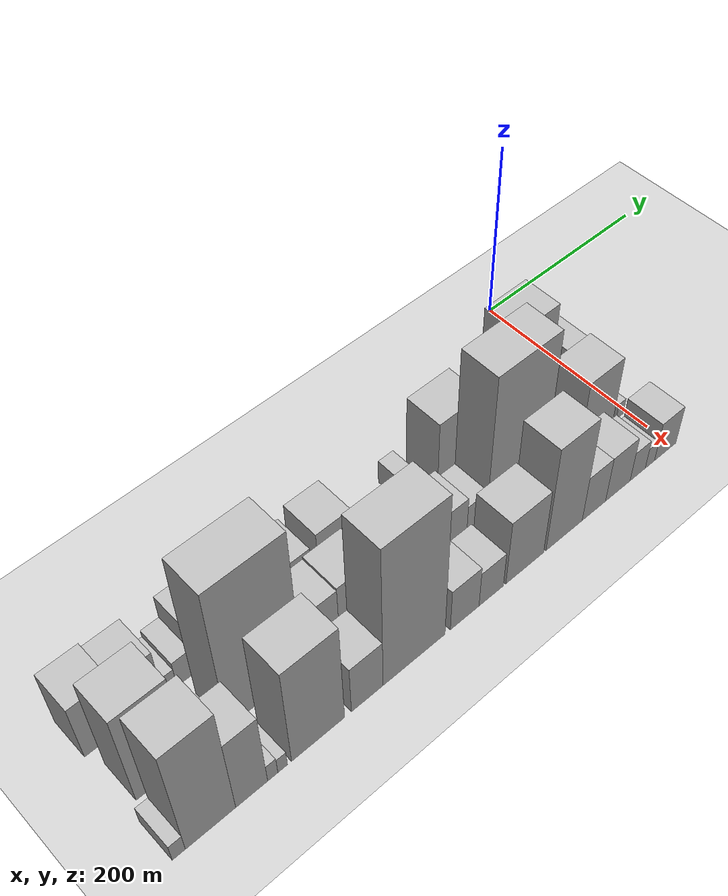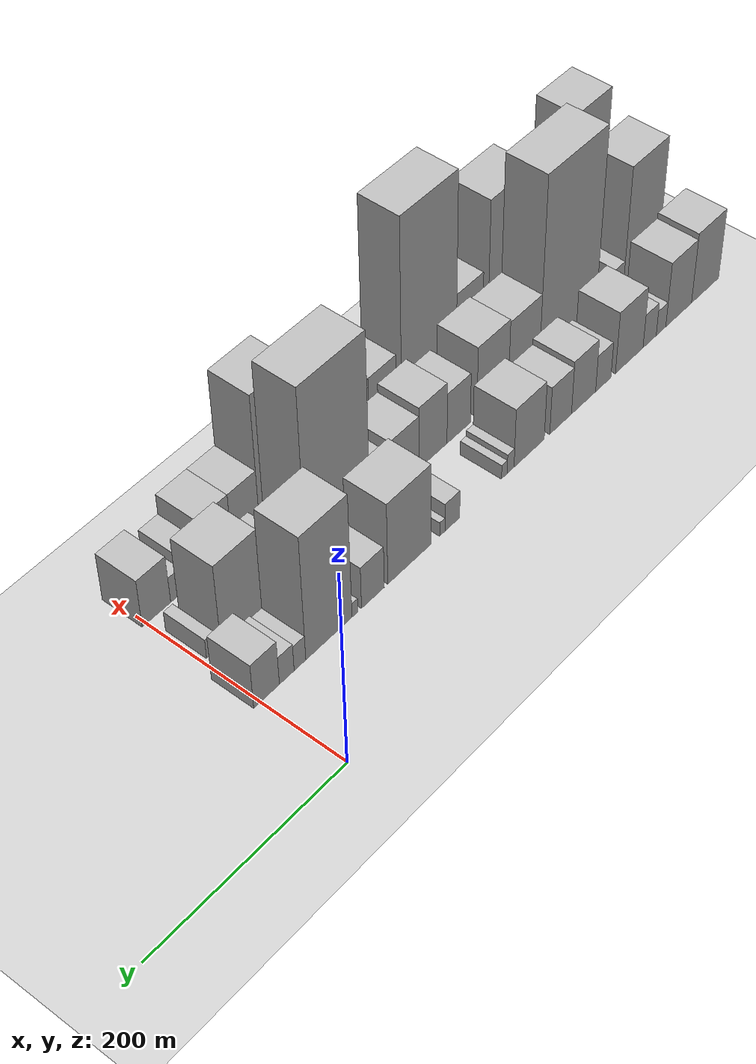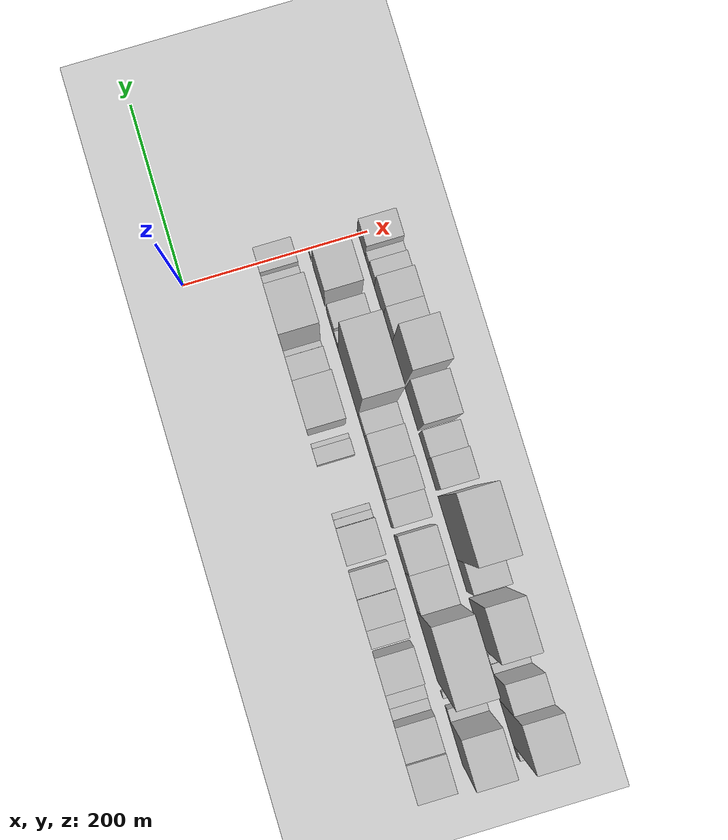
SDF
<sdf version="1.6">
 <world name="default">
  <include><name>ground_plane_1</name><uri>model://HANNAS_ground_plane</uri></include>
  <model name="building_1">
   <static>1</static>
   <pose>100.0000 -540.6240 0 0.000000 0.000000 0.000000</pose>
   <link name="link">
    <pose>0 0 37.50 0 0 0</pose>
    <collision name="collision"><geometry><box><size>40.0000 38.7520 75.0000</size></box></geometry></collision>
    <visual name="visual">
     <cast_shadows>0</cast_shadows>
     <geometry><box><size>40.0000 38.7520 75.0000</size></box></geometry>
     <material>
      <script>
       <uri>model://HANNAS_wall/materials/scripts</uri>
       <uri>model://HANNAS_wall/materials/textures</uri>
       <name>vrc/HANNAS_wall</name>
      </script>
     </material>
    </visual>
   </link>
  </model>
  <model name="building_2">
   <static>1</static>
   <pose>100.0000 -503.2858 0 0.000000 0.000000 0.000000</pose>
   <link name="link">
    <pose>0 0 34.50 0 0 0</pose>
    <collision name="collision"><geometry><box><size>40.0000 35.9245 69.0000</size></box></geometry></collision>
    <visual name="visual">
     <cast_shadows>0</cast_shadows>
     <geometry><box><size>40.0000 35.9245 69.0000</size></box></geometry>
     <material>
      <script>
       <uri>model://HANNAS_wall/materials/scripts</uri>
       <uri>model://HANNAS_wall/materials/textures</uri>
       <name>vrc/HANNAS_wall</name>
      </script>
     </material>
    </visual>
   </link>
  </model>
  <model name="building_3">
   <static>1</static>
   <pose>100.0000 -478.7070 0 0.000000 0.000000 0.000000</pose>
   <link name="link">
    <pose>0 0 13.50 0 0 0</pose>
    <collision name="collision"><geometry><box><size>40.0000 13.2330 27.0000</size></box></geometry></collision>
    <visual name="visual">
     <cast_shadows>0</cast_shadows>
     <geometry><box><size>40.0000 13.2330 27.0000</size></box></geometry>
     <material>
      <script>
       <uri>model://HANNAS_wall/materials/scripts</uri>
       <uri>model://HANNAS_wall/materials/textures</uri>
       <name>vrc/HANNAS_wall</name>
      </script>
     </material>
    </visual>
   </link>
  </model>
  <model name="building_4">
   <static>1</static>
   <pose>100.0000 -463.0594 0 0.000000 0.000000 0.000000</pose>
   <link name="link">
    <pose>0 0 18.00 0 0 0</pose>
    <collision name="collision"><geometry><box><size>40.0000 18.0622 36.0000</size></box></geometry></collision>
    <visual name="visual">
     <cast_shadows>0</cast_shadows>
     <geometry><box><size>40.0000 18.0622 36.0000</size></box></geometry>
     <material>
      <script>
       <uri>model://HANNAS_wall/materials/scripts</uri>
       <uri>model://HANNAS_wall/materials/textures</uri>
       <name>vrc/HANNAS_wall</name>
      </script>
     </material>
    </visual>
   </link>
  </model>
  <model name="building_5">
   <static>1</static>
   <pose>100.0000 -435.4157 0 0.000000 0.000000 0.000000</pose>
   <link name="link">
    <pose>0 0 33.00 0 0 0</pose>
    <collision name="collision"><geometry><box><size>40.0000 37.2252 66.0000</size></box></geometry></collision>
    <visual name="visual">
     <cast_shadows>0</cast_shadows>
     <geometry><box><size>40.0000 37.2252 66.0000</size></box></geometry>
     <material>
      <script>
       <uri>model://HANNAS_wall/materials/scripts</uri>
       <uri>model://HANNAS_wall/materials/textures</uri>
       <name>vrc/HANNAS_wall</name>
      </script>
     </material>
    </visual>
   </link>
  </model>
  <model name="building_6">
   <static>1</static>
   <pose>100.0000 -400.6879 0 0.000000 0.000000 0.000000</pose>
   <link name="link">
    <pose>0 0 19.50 0 0 0</pose>
    <collision name="collision"><geometry><box><size>40.0000 20.2305 39.0000</size></box></geometry></collision>
    <visual name="visual">
     <cast_shadows>0</cast_shadows>
     <geometry><box><size>40.0000 20.2305 39.0000</size></box></geometry>
     <material>
      <script>
       <uri>model://HANNAS_wall/materials/scripts</uri>
       <uri>model://HANNAS_wall/materials/textures</uri>
       <name>vrc/HANNAS_wall</name>
      </script>
     </material>
    </visual>
   </link>
  </model>
  <model name="building_7">
   <static>1</static>
   <pose>100.0000 -374.8628 0 0.000000 0.000000 0.000000</pose>
   <link name="link">
    <pose>0 0 28.50 0 0 0</pose>
    <collision name="collision"><geometry><box><size>40.0000 31.4197 57.0000</size></box></geometry></collision>
    <visual name="visual">
     <cast_shadows>0</cast_shadows>
     <geometry><box><size>40.0000 31.4197 57.0000</size></box></geometry>
     <material>
      <script>
       <uri>model://HANNAS_wall/materials/scripts</uri>
       <uri>model://HANNAS_wall/materials/textures</uri>
       <name>vrc/HANNAS_wall</name>
      </script>
     </material>
    </visual>
   </link>
  </model>
  <model name="building_8">
   <static>1</static>
   <pose>100.0000 -345.2533 0 0.000000 0.000000 0.000000</pose>
   <link name="link">
    <pose>0 0 25.50 0 0 0</pose>
    <collision name="collision"><geometry><box><size>40.0000 27.7993 51.0000</size></box></geometry></collision>
    <visual name="visual">
     <cast_shadows>0</cast_shadows>
     <geometry><box><size>40.0000 27.7993 51.0000</size></box></geometry>
     <material>
      <script>
       <uri>model://HANNAS_wall/materials/scripts</uri>
       <uri>model://HANNAS_wall/materials/textures</uri>
       <name>vrc/HANNAS_wall</name>
      </script>
     </material>
    </visual>
   </link>
  </model>
  <model name="building_9">
   <static>1</static>
   <pose>100.0000 -305.4927 0 0.000000 0.000000 0.000000</pose>
   <link name="link">
    <pose>0 0 31.50 0 0 0</pose>
    <collision name="collision"><geometry><box><size>40.0000 37.7221 63.0000</size></box></geometry></collision>
    <visual name="visual">
     <cast_shadows>0</cast_shadows>
     <geometry><box><size>40.0000 37.7221 63.0000</size></box></geometry>
     <material>
      <script>
       <uri>model://HANNAS_wall/materials/scripts</uri>
       <uri>model://HANNAS_wall/materials/textures</uri>
       <name>vrc/HANNAS_wall</name>
      </script>
     </material>
    </visual>
   </link>
  </model>
  <model name="building_10">
   <static>1</static>
   <pose>100.0000 -282.3842 0 0.000000 0.000000 0.000000</pose>
   <link name="link">
    <pose>0 0 10.50 0 0 0</pose>
    <collision name="collision"><geometry><box><size>40.0000 8.4948 21.0000</size></box></geometry></collision>
    <visual name="visual">
     <cast_shadows>0</cast_shadows>
     <geometry><box><size>40.0000 8.4948 21.0000</size></box></geometry>
     <material>
      <script>
       <uri>model://HANNAS_wall/materials/scripts</uri>
       <uri>model://HANNAS_wall/materials/textures</uri>
       <name>vrc/HANNAS_wall</name>
      </script>
     </material>
    </visual>
   </link>
  </model>
  <model name="building_11">
   <static>1</static>
   <pose>100.0000 -274.6792 0 0.000000 0.000000 0.000000</pose>
   <link name="link">
    <pose>0 0 7.50 0 0 0</pose>
    <collision name="collision"><geometry><box><size>40.0000 6.9152 15.0000</size></box></geometry></collision>
    <visual name="visual">
     <cast_shadows>0</cast_shadows>
     <geometry><box><size>40.0000 6.9152 15.0000</size></box></geometry>
     <material>
      <script>
       <uri>model://HANNAS_wall/materials/scripts</uri>
       <uri>model://HANNAS_wall/materials/textures</uri>
       <name>vrc/HANNAS_wall</name>
      </script>
     </material>
    </visual>
   </link>
  </model>
  <model name="building_12">
   <static>1</static>
   <pose>100.0000 -212.0638 0 0.000000 0.000000 0.000000</pose>
   <link name="link">
    <pose>0 0 15.00 0 0 0</pose>
    <collision name="collision"><geometry><box><size>40.0000 17.4385 30.0000</size></box></geometry></collision>
    <visual name="visual">
     <cast_shadows>0</cast_shadows>
     <geometry><box><size>40.0000 17.4385 30.0000</size></box></geometry>
     <material>
      <script>
       <uri>model://HANNAS_wall/materials/scripts</uri>
       <uri>model://HANNAS_wall/materials/textures</uri>
       <name>vrc/HANNAS_wall</name>
      </script>
     </material>
    </visual>
   </link>
  </model>
  <model name="building_13">
   <static>1</static>
   <pose>100.0000 -200.2805 0 0.000000 0.000000 0.000000</pose>
   <link name="link">
    <pose>0 0 7.50 0 0 0</pose>
    <collision name="collision"><geometry><box><size>40.0000 6.1282 15.0000</size></box></geometry></collision>
    <visual name="visual">
     <cast_shadows>0</cast_shadows>
     <geometry><box><size>40.0000 6.1282 15.0000</size></box></geometry>
     <material>
      <script>
       <uri>model://HANNAS_wall/materials/scripts</uri>
       <uri>model://HANNAS_wall/materials/textures</uri>
       <name>vrc/HANNAS_wall</name>
      </script>
     </material>
    </visual>
   </link>
  </model>
  <model name="building_14">
   <static>1</static>
   <pose>100.0000 -162.4291 0 0.000000 0.000000 0.000000</pose>
   <link name="link">
    <pose>0 0 43.50 0 0 0</pose>
    <collision name="collision"><geometry><box><size>40.0000 49.5747 87.0000</size></box></geometry></collision>
    <visual name="visual">
     <cast_shadows>0</cast_shadows>
     <geometry><box><size>40.0000 49.5747 87.0000</size></box></geometry>
     <material>
      <script>
       <uri>model://HANNAS_wall/materials/scripts</uri>
       <uri>model://HANNAS_wall/materials/textures</uri>
       <name>vrc/HANNAS_wall</name>
      </script>
     </material>
    </visual>
   </link>
  </model>
  <model name="building_15">
   <static>1</static>
   <pose>100.0000 -120.9237 0 0.000000 0.000000 0.000000</pose>
   <link name="link">
    <pose>0 0 22.50 0 0 0</pose>
    <collision name="collision"><geometry><box><size>40.0000 25.4361 45.0000</size></box></geometry></collision>
    <visual name="visual">
     <cast_shadows>0</cast_shadows>
     <geometry><box><size>40.0000 25.4361 45.0000</size></box></geometry>
     <material>
      <script>
       <uri>model://HANNAS_wall/materials/scripts</uri>
       <uri>model://HANNAS_wall/materials/textures</uri>
       <name>vrc/HANNAS_wall</name>
      </script>
     </material>
    </visual>
   </link>
  </model>
  <model name="building_16">
   <static>1</static>
   <pose>100.0000 -100.9592 0 0.000000 0.000000 0.000000</pose>
   <link name="link">
    <pose>0 0 7.50 0 0 0</pose>
    <collision name="collision"><geometry><box><size>40.0000 6.4929 15.0000</size></box></geometry></collision>
    <visual name="visual">
     <cast_shadows>0</cast_shadows>
     <geometry><box><size>40.0000 6.4929 15.0000</size></box></geometry>
     <material>
      <script>
       <uri>model://HANNAS_wall/materials/scripts</uri>
       <uri>model://HANNAS_wall/materials/textures</uri>
       <name>vrc/HANNAS_wall</name>
      </script>
     </material>
    </visual>
   </link>
  </model>
  <model name="building_17">
   <static>1</static>
   <pose>100.0000 -72.6826 0 0.000000 0.000000 0.000000</pose>
   <link name="link">
    <pose>0 0 66.00 0 0 0</pose>
    <collision name="collision"><geometry><box><size>40.0000 50.0604 132.0000</size></box></geometry></collision>
    <visual name="visual">
     <cast_shadows>0</cast_shadows>
     <geometry><box><size>40.0000 50.0604 132.0000</size></box></geometry>
     <material>
      <script>
       <uri>model://HANNAS_wall/materials/scripts</uri>
       <uri>model://HANNAS_wall/materials/textures</uri>
       <name>vrc/HANNAS_wall</name>
      </script>
     </material>
    </visual>
   </link>
  </model>
  <model name="building_18">
   <static>1</static>
   <pose>100.0000 -41.4615 0 0.000000 0.000000 0.000000</pose>
   <link name="link">
    <pose>0 0 13.50 0 0 0</pose>
    <collision name="collision"><geometry><box><size>40.0000 12.3819 27.0000</size></box></geometry></collision>
    <visual name="visual">
     <cast_shadows>0</cast_shadows>
     <geometry><box><size>40.0000 12.3819 27.0000</size></box></geometry>
     <material>
      <script>
       <uri>model://HANNAS_wall/materials/scripts</uri>
       <uri>model://HANNAS_wall/materials/textures</uri>
       <name>vrc/HANNAS_wall</name>
      </script>
     </material>
    </visual>
   </link>
  </model>
  <model name="building_19">
   <static>1</static>
   <pose>100.0000 -27.5085 0 0.000000 0.000000 0.000000</pose>
   <link name="link">
    <pose>0 0 15.00 0 0 0</pose>
    <collision name="collision"><geometry><box><size>40.0000 15.5241 30.0000</size></box></geometry></collision>
    <visual name="visual">
     <cast_shadows>0</cast_shadows>
     <geometry><box><size>40.0000 15.5241 30.0000</size></box></geometry>
     <material>
      <script>
       <uri>model://HANNAS_wall/materials/scripts</uri>
       <uri>model://HANNAS_wall/materials/textures</uri>
       <name>vrc/HANNAS_wall</name>
      </script>
     </material>
    </visual>
   </link>
  </model>
  <model name="building_20">
   <static>1</static>
   <pose>100.0000 -6.3963 0 0.000000 0.000000 0.000000</pose>
   <link name="link">
    <pose>0 0 24.00 0 0 0</pose>
    <collision name="collision"><geometry><box><size>40.0000 26.7004 48.0000</size></box></geometry></collision>
    <visual name="visual">
     <cast_shadows>0</cast_shadows>
     <geometry><box><size>40.0000 26.7004 48.0000</size></box></geometry>
     <material>
      <script>
       <uri>model://HANNAS_wall/materials/scripts</uri>
       <uri>model://HANNAS_wall/materials/textures</uri>
       <name>vrc/HANNAS_wall</name>
      </script>
     </material>
    </visual>
   </link>
  </model>
  <model name="building_37">
   <static>1</static>
   <pose>155.0000 -527.5149 0 0.000000 0.000000 0.000000</pose>
   <link name="link">
    <pose>0 0 63.00 0 0 0</pose>
    <collision name="collision"><geometry><box><size>40.0000 48.9702 126.0000</size></box></geometry></collision>
    <visual name="visual">
     <cast_shadows>0</cast_shadows>
     <geometry><box><size>40.0000 48.9702 126.0000</size></box></geometry>
     <material>
      <script>
       <uri>model://HANNAS_wall/materials/scripts</uri>
       <uri>model://HANNAS_wall/materials/textures</uri>
       <name>vrc/HANNAS_wall</name>
      </script>
     </material>
    </visual>
   </link>
  </model>
  <model name="building_38">
   <static>1</static>
   <pose>155.0000 -496.4810 0 0.000000 0.000000 0.000000</pose>
   <link name="link">
    <pose>0 0 13.50 0 0 0</pose>
    <collision name="collision"><geometry><box><size>40.0000 13.0975 27.0000</size></box></geometry></collision>
    <visual name="visual">
     <cast_shadows>0</cast_shadows>
     <geometry><box><size>40.0000 13.0975 27.0000</size></box></geometry>
     <material>
      <script>
       <uri>model://HANNAS_wall/materials/scripts</uri>
       <uri>model://HANNAS_wall/materials/textures</uri>
       <name>vrc/HANNAS_wall</name>
      </script>
     </material>
    </visual>
   </link>
  </model>
  <model name="building_39">
   <static>1</static>
   <pose>155.0000 -477.5312 0 0.000000 0.000000 0.000000</pose>
   <link name="link">
    <pose>0 0 7.50 0 0 0</pose>
    <collision name="collision"><geometry><box><size>40.0000 6.8021 15.0000</size></box></geometry></collision>
    <visual name="visual">
     <cast_shadows>0</cast_shadows>
     <geometry><box><size>40.0000 6.8021 15.0000</size></box></geometry>
     <material>
      <script>
       <uri>model://HANNAS_wall/materials/scripts</uri>
       <uri>model://HANNAS_wall/materials/textures</uri>
       <name>vrc/HANNAS_wall</name>
      </script>
     </material>
    </visual>
   </link>
  </model>
  <model name="building_40">
   <static>1</static>
   <pose>155.0000 -427.5598 0 0.000000 0.000000 0.000000</pose>
   <link name="link">
    <pose>0 0 96.00 0 0 0</pose>
    <collision name="collision"><geometry><box><size>40.0000 75.1407 192.0000</size></box></geometry></collision>
    <visual name="visual">
     <cast_shadows>0</cast_shadows>
     <geometry><box><size>40.0000 75.1407 192.0000</size></box></geometry>
     <material>
      <script>
       <uri>model://HANNAS_wall/materials/scripts</uri>
       <uri>model://HANNAS_wall/materials/textures</uri>
       <name>vrc/HANNAS_wall</name>
      </script>
     </material>
    </visual>
   </link>
  </model>
  <model name="building_41">
   <static>1</static>
   <pose>155.0000 -370.0305 0 0.000000 0.000000 0.000000</pose>
   <link name="link">
    <pose>0 0 36.00 0 0 0</pose>
    <collision name="collision"><geometry><box><size>40.0000 39.9179 72.0000</size></box></geometry></collision>
    <visual name="visual">
     <cast_shadows>0</cast_shadows>
     <geometry><box><size>40.0000 39.9179 72.0000</size></box></geometry>
     <material>
      <script>
       <uri>model://HANNAS_wall/materials/scripts</uri>
       <uri>model://HANNAS_wall/materials/textures</uri>
       <name>vrc/HANNAS_wall</name>
      </script>
     </material>
    </visual>
   </link>
  </model>
  <model name="building_42">
   <static>1</static>
   <pose>155.0000 -330.1764 0 0.000000 0.000000 0.000000</pose>
   <link name="link">
    <pose>0 0 37.50 0 0 0</pose>
    <collision name="collision"><geometry><box><size>40.0000 39.7902 75.0000</size></box></geometry></collision>
    <visual name="visual">
     <cast_shadows>0</cast_shadows>
     <geometry><box><size>40.0000 39.7902 75.0000</size></box></geometry>
     <material>
      <script>
       <uri>model://HANNAS_wall/materials/scripts</uri>
       <uri>model://HANNAS_wall/materials/textures</uri>
       <name>vrc/HANNAS_wall</name>
      </script>
     </material>
    </visual>
   </link>
  </model>
  <model name="building_43">
   <static>1</static>
   <pose>155.0000 -287.9558 0 0.000000 0.000000 0.000000</pose>
   <link name="link">
    <pose>0 0 27.00 0 0 0</pose>
    <collision name="collision"><geometry><box><size>40.0000 28.6510 54.0000</size></box></geometry></collision>
    <visual name="visual">
     <cast_shadows>0</cast_shadows>
     <geometry><box><size>40.0000 28.6510 54.0000</size></box></geometry>
     <material>
      <script>
       <uri>model://HANNAS_wall/materials/scripts</uri>
       <uri>model://HANNAS_wall/materials/textures</uri>
       <name>vrc/HANNAS_wall</name>
      </script>
     </material>
    </visual>
   </link>
  </model>
  <model name="building_44">
   <static>1</static>
   <pose>155.0000 -256.7858 0 0.000000 0.000000 0.000000</pose>
   <link name="link">
    <pose>0 0 33.00 0 0 0</pose>
    <collision name="collision"><geometry><box><size>40.0000 33.6891 66.0000</size></box></geometry></collision>
    <visual name="visual">
     <cast_shadows>0</cast_shadows>
     <geometry><box><size>40.0000 33.6891 66.0000</size></box></geometry>
     <material>
      <script>
       <uri>model://HANNAS_wall/materials/scripts</uri>
       <uri>model://HANNAS_wall/materials/textures</uri>
       <name>vrc/HANNAS_wall</name>
      </script>
     </material>
    </visual>
   </link>
  </model>
  <model name="building_45">
   <static>1</static>
   <pose>155.0000 -223.1368 0 0.000000 0.000000 0.000000</pose>
   <link name="link">
    <pose>0 0 28.50 0 0 0</pose>
    <collision name="collision"><geometry><box><size>40.0000 33.6089 57.0000</size></box></geometry></collision>
    <visual name="visual">
     <cast_shadows>0</cast_shadows>
     <geometry><box><size>40.0000 33.6089 57.0000</size></box></geometry>
     <material>
      <script>
       <uri>model://HANNAS_wall/materials/scripts</uri>
       <uri>model://HANNAS_wall/materials/textures</uri>
       <name>vrc/HANNAS_wall</name>
      </script>
     </material>
    </visual>
   </link>
  </model>
  <model name="building_46">
   <static>1</static>
   <pose>155.0000 -194.4467 0 0.000000 0.000000 0.000000</pose>
   <link name="link">
    <pose>0 0 22.50 0 0 0</pose>
    <collision name="collision"><geometry><box><size>40.0000 23.7713 45.0000</size></box></geometry></collision>
    <visual name="visual">
     <cast_shadows>0</cast_shadows>
     <geometry><box><size>40.0000 23.7713 45.0000</size></box></geometry>
     <material>
      <script>
       <uri>model://HANNAS_wall/materials/scripts</uri>
       <uri>model://HANNAS_wall/materials/textures</uri>
       <name>vrc/HANNAS_wall</name>
      </script>
     </material>
    </visual>
   </link>
  </model>
  <model name="building_47">
   <static>1</static>
   <pose>155.0000 -146.6544 0 0.000000 0.000000 0.000000</pose>
   <link name="link">
    <pose>0 0 94.50 0 0 0</pose>
    <collision name="collision"><geometry><box><size>40.0000 71.8134 189.0000</size></box></geometry></collision>
    <visual name="visual">
     <cast_shadows>0</cast_shadows>
     <geometry><box><size>40.0000 71.8134 189.0000</size></box></geometry>
     <material>
      <script>
       <uri>model://HANNAS_wall/materials/scripts</uri>
       <uri>model://HANNAS_wall/materials/textures</uri>
       <name>vrc/HANNAS_wall</name>
      </script>
     </material>
    </visual>
   </link>
  </model>
  <model name="building_48">
   <static>1</static>
   <pose>155.0000 -103.0081 0 0.000000 0.000000 0.000000</pose>
   <link name="link">
    <pose>0 0 15.00 0 0 0</pose>
    <collision name="collision"><geometry><box><size>40.0000 15.4793 30.0000</size></box></geometry></collision>
    <visual name="visual">
     <cast_shadows>0</cast_shadows>
     <geometry><box><size>40.0000 15.4793 30.0000</size></box></geometry>
     <material>
      <script>
       <uri>model://HANNAS_wall/materials/scripts</uri>
       <uri>model://HANNAS_wall/materials/textures</uri>
       <name>vrc/HANNAS_wall</name>
      </script>
     </material>
    </visual>
   </link>
  </model>
  <model name="building_49">
   <static>1</static>
   <pose>155.0000 -82.1235 0 0.000000 0.000000 0.000000</pose>
   <link name="link">
    <pose>0 0 24.00 0 0 0</pose>
    <collision name="collision"><geometry><box><size>40.0000 26.2899 48.0000</size></box></geometry></collision>
    <visual name="visual">
     <cast_shadows>0</cast_shadows>
     <geometry><box><size>40.0000 26.2899 48.0000</size></box></geometry>
     <material>
      <script>
       <uri>model://HANNAS_wall/materials/scripts</uri>
       <uri>model://HANNAS_wall/materials/textures</uri>
       <name>vrc/HANNAS_wall</name>
      </script>
     </material>
    </visual>
   </link>
  </model>
  <model name="building_50">
   <static>1</static>
   <pose>155.0000 -40.9794 0 0.000000 0.000000 0.000000</pose>
   <link name="link">
    <pose>0 0 43.50 0 0 0</pose>
    <collision name="collision"><geometry><box><size>40.0000 43.9984 87.0000</size></box></geometry></collision>
    <visual name="visual">
     <cast_shadows>0</cast_shadows>
     <geometry><box><size>40.0000 43.9984 87.0000</size></box></geometry>
     <material>
      <script>
       <uri>model://HANNAS_wall/materials/scripts</uri>
       <uri>model://HANNAS_wall/materials/textures</uri>
       <name>vrc/HANNAS_wall</name>
      </script>
     </material>
    </visual>
   </link>
  </model>
  <model name="building_51">
   <static>1</static>
   <pose>155.0000 -9.0992 0 0.000000 0.000000 0.000000</pose>
   <link name="link">
    <pose>0 0 10.50 0 0 0</pose>
    <collision name="collision"><geometry><box><size>40.0000 9.7620 21.0000</size></box></geometry></collision>
    <visual name="visual">
     <cast_shadows>0</cast_shadows>
     <geometry><box><size>40.0000 9.7620 21.0000</size></box></geometry>
     <material>
      <script>
       <uri>model://HANNAS_wall/materials/scripts</uri>
       <uri>model://HANNAS_wall/materials/textures</uri>
       <name>vrc/HANNAS_wall</name>
      </script>
     </material>
    </visual>
   </link>
  </model>
  <model name="building_72">
   <static>1</static>
   <pose>210.0000 -554.0187 0 0.000000 0.000000 0.000000</pose>
   <link name="link">
    <pose>0 0 12.00 0 0 0</pose>
    <collision name="collision"><geometry><box><size>40.0000 11.9625 24.0000</size></box></geometry></collision>
    <visual name="visual">
     <cast_shadows>0</cast_shadows>
     <geometry><box><size>40.0000 11.9625 24.0000</size></box></geometry>
     <material>
      <script>
       <uri>model://HANNAS_wall/materials/scripts</uri>
       <uri>model://HANNAS_wall/materials/textures</uri>
       <name>vrc/HANNAS_wall</name>
      </script>
     </material>
    </visual>
   </link>
  </model>
  <model name="building_73">
   <static>1</static>
   <pose>210.0000 -524.6686 0 0.000000 0.000000 0.000000</pose>
   <link name="link">
    <pose>0 0 75.00 0 0 0</pose>
    <collision name="collision"><geometry><box><size>40.0000 46.7378 150.0000</size></box></geometry></collision>
    <visual name="visual">
     <cast_shadows>0</cast_shadows>
     <geometry><box><size>40.0000 46.7378 150.0000</size></box></geometry>
     <material>
      <script>
       <uri>model://HANNAS_wall/materials/scripts</uri>
       <uri>model://HANNAS_wall/materials/textures</uri>
       <name>vrc/HANNAS_wall</name>
      </script>
     </material>
    </visual>
   </link>
  </model>
  <model name="building_74">
   <static>1</static>
   <pose>210.0000 -485.9888 0 0.000000 0.000000 0.000000</pose>
   <link name="link">
    <pose>0 0 51.00 0 0 0</pose>
    <collision name="collision"><geometry><box><size>40.0000 30.6217 102.0000</size></box></geometry></collision>
    <visual name="visual">
     <cast_shadows>0</cast_shadows>
     <geometry><box><size>40.0000 30.6217 102.0000</size></box></geometry>
     <material>
      <script>
       <uri>model://HANNAS_wall/materials/scripts</uri>
       <uri>model://HANNAS_wall/materials/textures</uri>
       <name>vrc/HANNAS_wall</name>
      </script>
     </material>
    </visual>
   </link>
  </model>
  <model name="building_75">
   <static>1</static>
   <pose>210.0000 -465.7346 0 0.000000 0.000000 0.000000</pose>
   <link name="link">
    <pose>0 0 12.00 0 0 0</pose>
    <collision name="collision"><geometry><box><size>40.0000 9.8868 24.0000</size></box></geometry></collision>
    <visual name="visual">
     <cast_shadows>0</cast_shadows>
     <geometry><box><size>40.0000 9.8868 24.0000</size></box></geometry>
     <material>
      <script>
       <uri>model://HANNAS_wall/materials/scripts</uri>
       <uri>model://HANNAS_wall/materials/textures</uri>
       <name>vrc/HANNAS_wall</name>
      </script>
     </material>
    </visual>
   </link>
  </model>
  <model name="building_76">
   <static>1</static>
   <pose>210.0000 -456.0236 0 0.000000 0.000000 0.000000</pose>
   <link name="link">
    <pose>0 0 10.50 0 0 0</pose>
    <collision name="collision"><geometry><box><size>40.0000 9.5352 21.0000</size></box></geometry></collision>
    <visual name="visual">
     <cast_shadows>0</cast_shadows>
     <geometry><box><size>40.0000 9.5352 21.0000</size></box></geometry>
     <material>
      <script>
       <uri>model://HANNAS_wall/materials/scripts</uri>
       <uri>model://HANNAS_wall/materials/textures</uri>
       <name>vrc/HANNAS_wall</name>
      </script>
     </material>
    </visual>
   </link>
  </model>
  <model name="building_77">
   <static>1</static>
   <pose>210.0000 -420.3888 0 0.000000 0.000000 0.000000</pose>
   <link name="link">
    <pose>0 0 67.50 0 0 0</pose>
    <collision name="collision"><geometry><box><size>40.0000 53.7343 135.0000</size></box></geometry></collision>
    <visual name="visual">
     <cast_shadows>0</cast_shadows>
     <geometry><box><size>40.0000 53.7343 135.0000</size></box></geometry>
     <material>
      <script>
       <uri>model://HANNAS_wall/materials/scripts</uri>
       <uri>model://HANNAS_wall/materials/textures</uri>
       <name>vrc/HANNAS_wall</name>
      </script>
     </material>
    </visual>
   </link>
  </model>
  <model name="building_78">
   <static>1</static>
   <pose>210.0000 -369.7968 0 0.000000 0.000000 0.000000</pose>
   <link name="link">
    <pose>0 0 33.00 0 0 0</pose>
    <collision name="collision"><geometry><box><size>40.0000 33.4498 66.0000</size></box></geometry></collision>
    <visual name="visual">
     <cast_shadows>0</cast_shadows>
     <geometry><box><size>40.0000 33.4498 66.0000</size></box></geometry>
     <material>
      <script>
       <uri>model://HANNAS_wall/materials/scripts</uri>
       <uri>model://HANNAS_wall/materials/textures</uri>
       <name>vrc/HANNAS_wall</name>
      </script>
     </material>
    </visual>
   </link>
  </model>
  <model name="building_79">
   <static>1</static>
   <pose>210.0000 -319.1376 0 0.000000 0.000000 0.000000</pose>
   <link name="link">
    <pose>0 0 96.00 0 0 0</pose>
    <collision name="collision"><geometry><box><size>40.0000 67.8688 192.0000</size></box></geometry></collision>
    <visual name="visual">
     <cast_shadows>0</cast_shadows>
     <geometry><box><size>40.0000 67.8688 192.0000</size></box></geometry>
     <material>
      <script>
       <uri>model://HANNAS_wall/materials/scripts</uri>
       <uri>model://HANNAS_wall/materials/textures</uri>
       <name>vrc/HANNAS_wall</name>
      </script>
     </material>
    </visual>
   </link>
  </model>
  <model name="building_80">
   <static>1</static>
   <pose>210.0000 -262.7349 0 0.000000 0.000000 0.000000</pose>
   <link name="link">
    <pose>0 0 28.50 0 0 0</pose>
    <collision name="collision"><geometry><box><size>40.0000 32.9367 57.0000</size></box></geometry></collision>
    <visual name="visual">
     <cast_shadows>0</cast_shadows>
     <geometry><box><size>40.0000 32.9367 57.0000</size></box></geometry>
     <material>
      <script>
       <uri>model://HANNAS_wall/materials/scripts</uri>
       <uri>model://HANNAS_wall/materials/textures</uri>
       <name>vrc/HANNAS_wall</name>
      </script>
     </material>
    </visual>
   </link>
  </model>
  <model name="building_81">
   <static>1</static>
   <pose>210.0000 -232.0202 0 0.000000 0.000000 0.000000</pose>
   <link name="link">
    <pose>0 0 24.00 0 0 0</pose>
    <collision name="collision"><geometry><box><size>40.0000 28.4927 48.0000</size></box></geometry></collision>
    <visual name="visual">
     <cast_shadows>0</cast_shadows>
     <geometry><box><size>40.0000 28.4927 48.0000</size></box></geometry>
     <material>
      <script>
       <uri>model://HANNAS_wall/materials/scripts</uri>
       <uri>model://HANNAS_wall/materials/textures</uri>
       <name>vrc/HANNAS_wall</name>
      </script>
     </material>
    </visual>
   </link>
  </model>
  <model name="building_82">
   <static>1</static>
   <pose>210.0000 -191.9331 0 0.000000 0.000000 0.000000</pose>
   <link name="link">
    <pose>0 0 43.50 0 0 0</pose>
    <collision name="collision"><geometry><box><size>40.0000 45.6815 87.0000</size></box></geometry></collision>
    <visual name="visual">
     <cast_shadows>0</cast_shadows>
     <geometry><box><size>40.0000 45.6815 87.0000</size></box></geometry>
     <material>
      <script>
       <uri>model://HANNAS_wall/materials/scripts</uri>
       <uri>model://HANNAS_wall/materials/textures</uri>
       <name>vrc/HANNAS_wall</name>
      </script>
     </material>
    </visual>
   </link>
  </model>
  <model name="building_83">
   <static>1</static>
   <pose>210.0000 -143.3670 0 0.000000 0.000000 0.000000</pose>
   <link name="link">
    <pose>0 0 69.00 0 0 0</pose>
    <collision name="collision"><geometry><box><size>40.0000 45.4508 138.0000</size></box></geometry></collision>
    <visual name="visual">
     <cast_shadows>0</cast_shadows>
     <geometry><box><size>40.0000 45.4508 138.0000</size></box></geometry>
     <material>
      <script>
       <uri>model://HANNAS_wall/materials/scripts</uri>
       <uri>model://HANNAS_wall/materials/textures</uri>
       <name>vrc/HANNAS_wall</name>
      </script>
     </material>
    </visual>
   </link>
  </model>
  <model name="building_84">
   <static>1</static>
   <pose>210.0000 -105.6034 0 0.000000 0.000000 0.000000</pose>
   <link name="link">
    <pose>0 0 30.00 0 0 0</pose>
    <collision name="collision"><geometry><box><size>40.0000 30.0762 60.0000</size></box></geometry></collision>
    <visual name="visual">
     <cast_shadows>0</cast_shadows>
     <geometry><box><size>40.0000 30.0762 60.0000</size></box></geometry>
     <material>
      <script>
       <uri>model://HANNAS_wall/materials/scripts</uri>
       <uri>model://HANNAS_wall/materials/textures</uri>
       <name>vrc/HANNAS_wall</name>
      </script>
     </material>
    </visual>
   </link>
  </model>
  <model name="building_85">
   <static>1</static>
   <pose>210.0000 -74.3959 0 0.000000 0.000000 0.000000</pose>
   <link name="link">
    <pose>0 0 30.00 0 0 0</pose>
    <collision name="collision"><geometry><box><size>40.0000 32.3389 60.0000</size></box></geometry></collision>
    <visual name="visual">
     <cast_shadows>0</cast_shadows>
     <geometry><box><size>40.0000 32.3389 60.0000</size></box></geometry>
     <material>
      <script>
       <uri>model://HANNAS_wall/materials/scripts</uri>
       <uri>model://HANNAS_wall/materials/textures</uri>
       <name>vrc/HANNAS_wall</name>
      </script>
     </material>
    </visual>
   </link>
  </model>
  <model name="building_86">
   <static>1</static>
   <pose>210.0000 -48.0343 0 0.000000 0.000000 0.000000</pose>
   <link name="link">
    <pose>0 0 19.50 0 0 0</pose>
    <collision name="collision"><geometry><box><size>40.0000 20.3843 39.0000</size></box></geometry></collision>
    <visual name="visual">
     <cast_shadows>0</cast_shadows>
     <geometry><box><size>40.0000 20.3843 39.0000</size></box></geometry>
     <material>
      <script>
       <uri>model://HANNAS_wall/materials/scripts</uri>
       <uri>model://HANNAS_wall/materials/textures</uri>
       <name>vrc/HANNAS_wall</name>
      </script>
     </material>
    </visual>
   </link>
  </model>
  <model name="building_87">
   <static>1</static>
   <pose>210.0000 -31.5546 0 0.000000 0.000000 0.000000</pose>
   <link name="link">
    <pose>0 0 13.50 0 0 0</pose>
    <collision name="collision"><geometry><box><size>40.0000 12.5751 27.0000</size></box></geometry></collision>
    <visual name="visual">
     <cast_shadows>0</cast_shadows>
     <geometry><box><size>40.0000 12.5751 27.0000</size></box></geometry>
     <material>
      <script>
       <uri>model://HANNAS_wall/materials/scripts</uri>
       <uri>model://HANNAS_wall/materials/textures</uri>
       <name>vrc/HANNAS_wall</name>
      </script>
     </material>
    </visual>
   </link>
  </model>
  <model name="building_88">
   <static>1</static>
   <pose>210.0000 -10.5512 0 0.000000 0.000000 0.000000</pose>
   <link name="link">
    <pose>0 0 25.50 0 0 0</pose>
    <collision name="collision"><geometry><box><size>40.0000 29.4318 51.0000</size></box></geometry></collision>
    <visual name="visual">
     <cast_shadows>0</cast_shadows>
     <geometry><box><size>40.0000 29.4318 51.0000</size></box></geometry>
     <material>
      <script>
       <uri>model://HANNAS_wall/materials/scripts</uri>
       <uri>model://HANNAS_wall/materials/textures</uri>
       <name>vrc/HANNAS_wall</name>
      </script>
     </material>
    </visual>
   </link>
  </model>
 </world>
</sdf>
